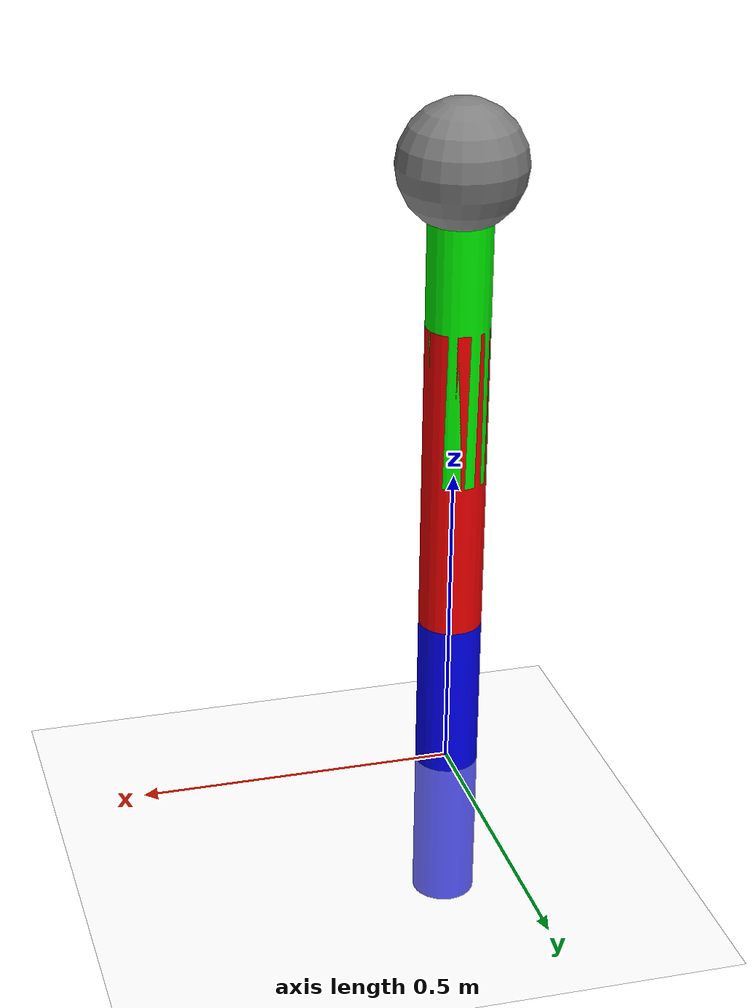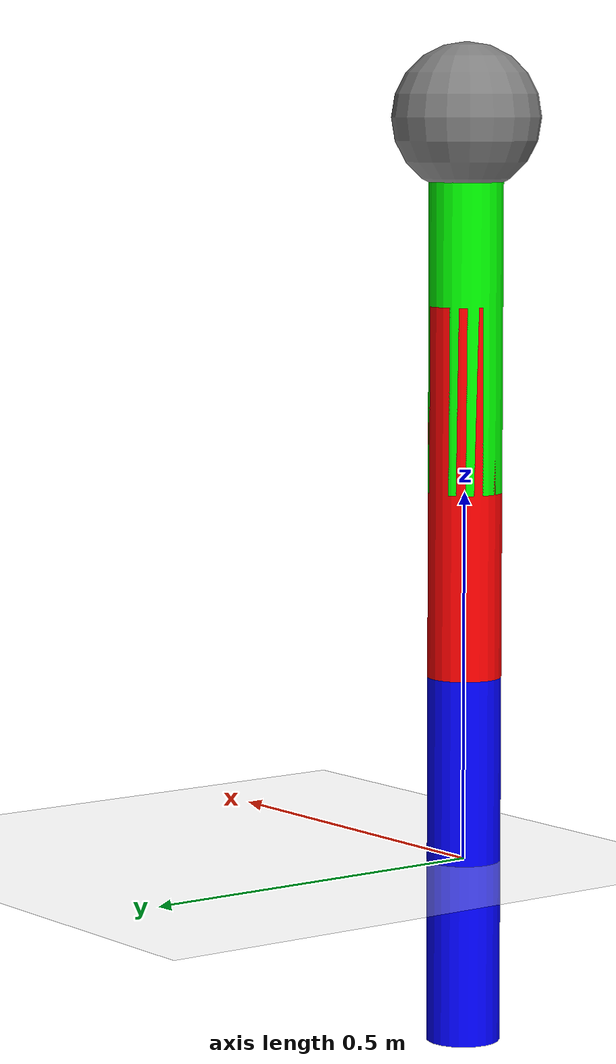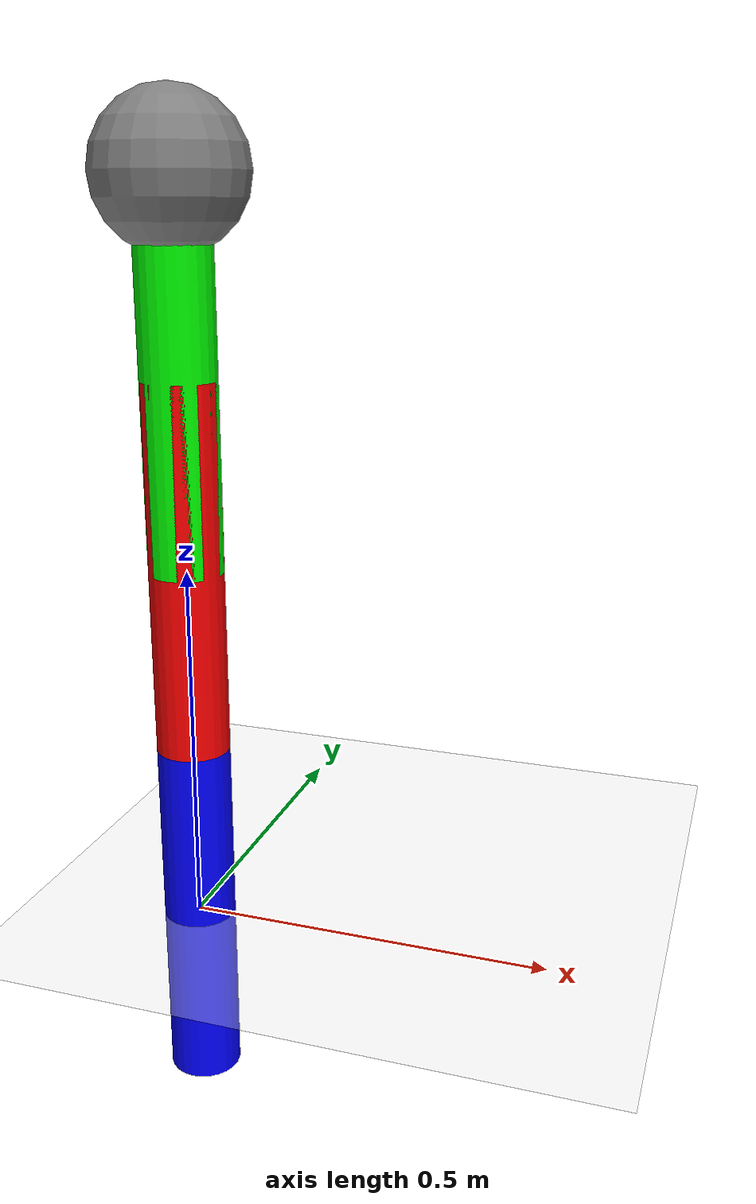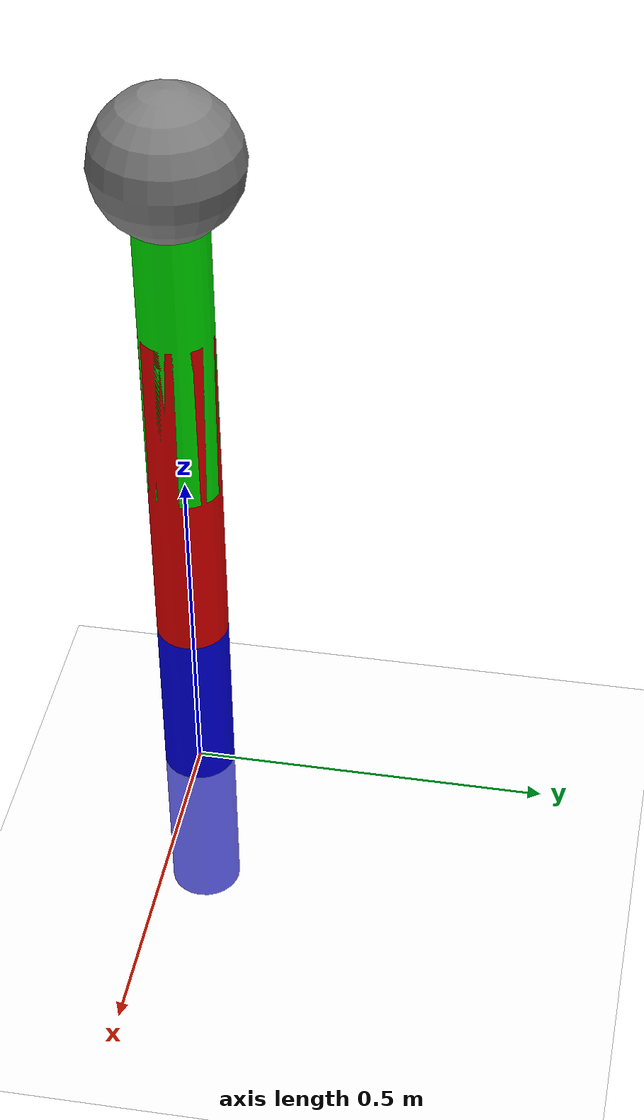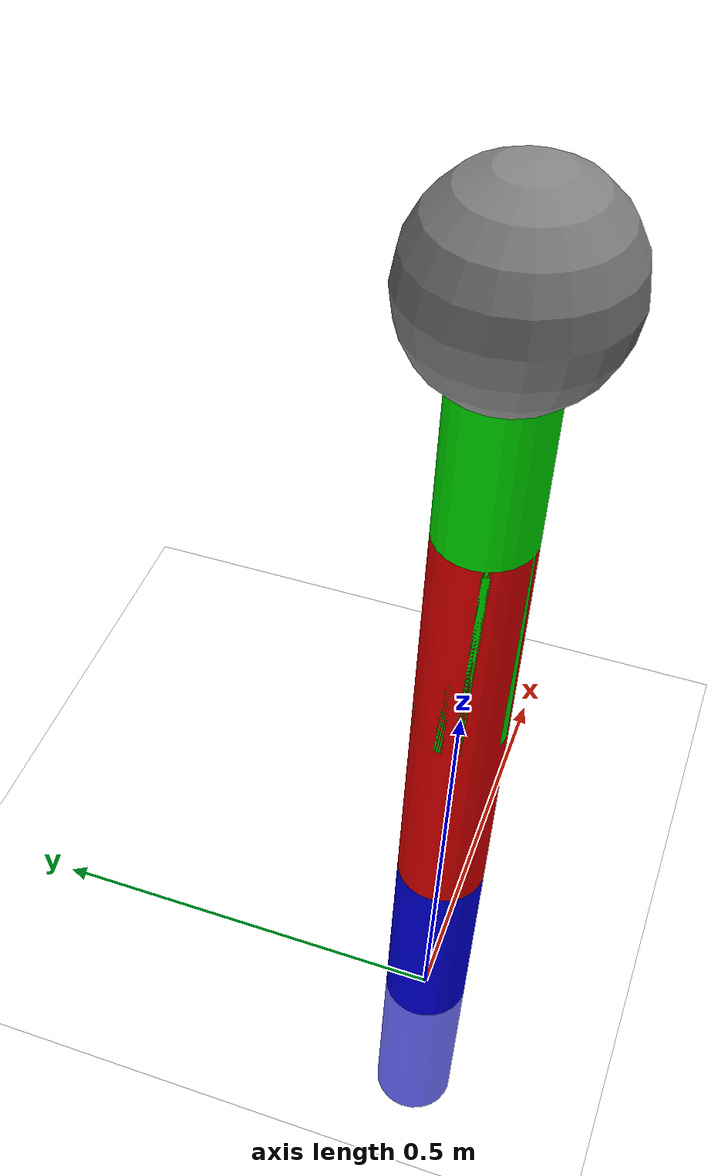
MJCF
<mujoco>

   <default>
      <joint damping="1"/>
      <motor ctrlrange="-3 3"/>
   </default>

   <option timestep="0.01" gravity="0 0 0" />
   <worldbody>
      <light diffuse=".5 .5 .5" pos="0 0 10" dir="0 0 -1"/>
      <geom type="plane" size="2 2 0.1" rgba="1 1 1 1"/>
      <body pos="0 0 0" euler="0 0 90">
         <joint type="hinge" axis="0 0 1" pos="0 0 0"/>
         <geom type="cylinder" size="0.05 0.25" rgba="0 0 1 1"/>
         <body>
            <joint type="slide" axis="0 0 1" pos="0 0 0.5"/>
            <geom pos="0 0 0.5" euler="0 0 0" type="cylinder" size="0.05 0.25" rgba="1 0 0 1"/>
            <body>
               <joint name="t2" type="hinge" axis="1 0 0" pos="0 0 0.5"/>
               <geom pos="0 0 0.75" euler="0 0 0" type="cylinder" size="0.05 0.25" rgba="0 1 0 1"/>
               <site name="tip" size="0.1" pos="0 0 1"/>
            </body>
         </body>
      </body>
   </worldbody>
   <sensor>
      <framepos objtype="site" objname="tip"/>
   </sensor>
</mujoco>
